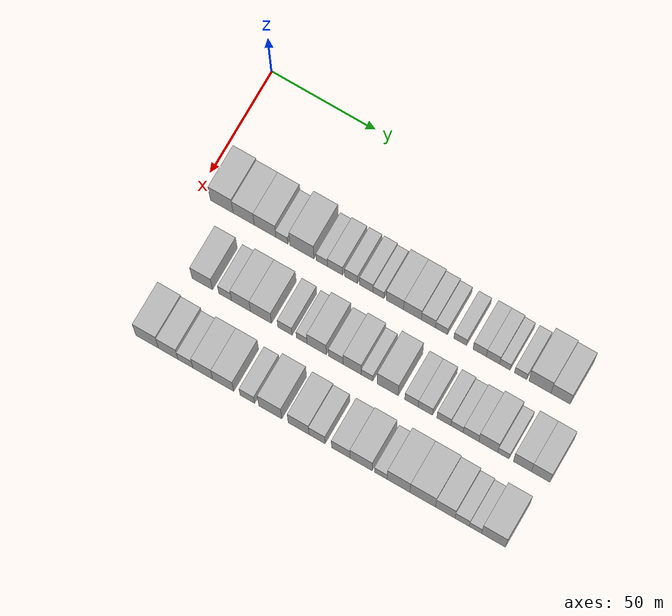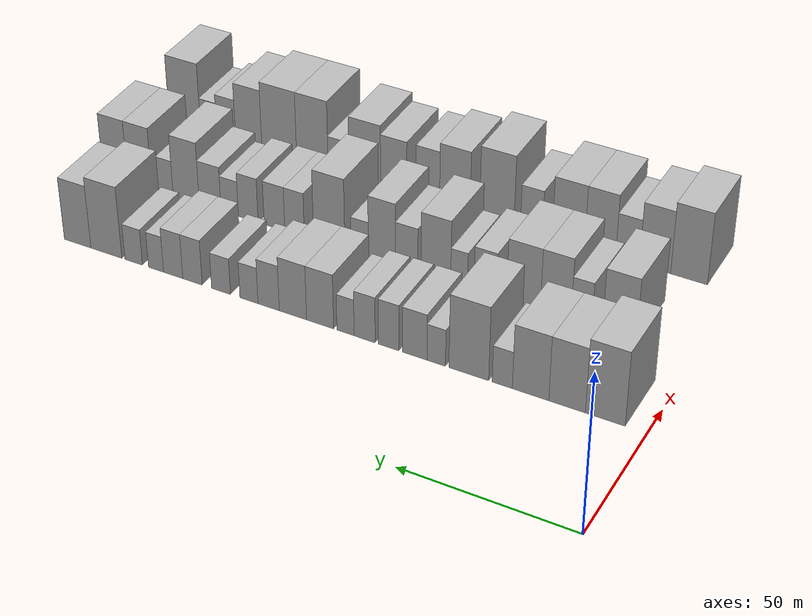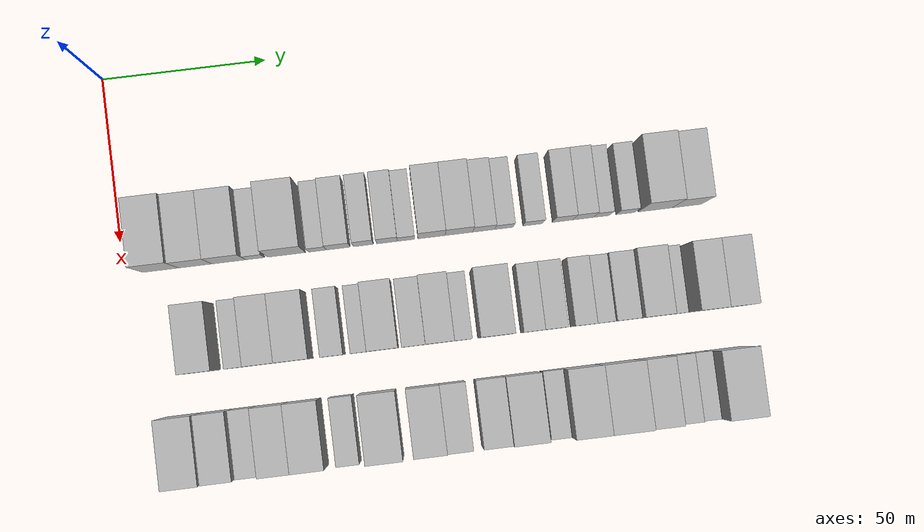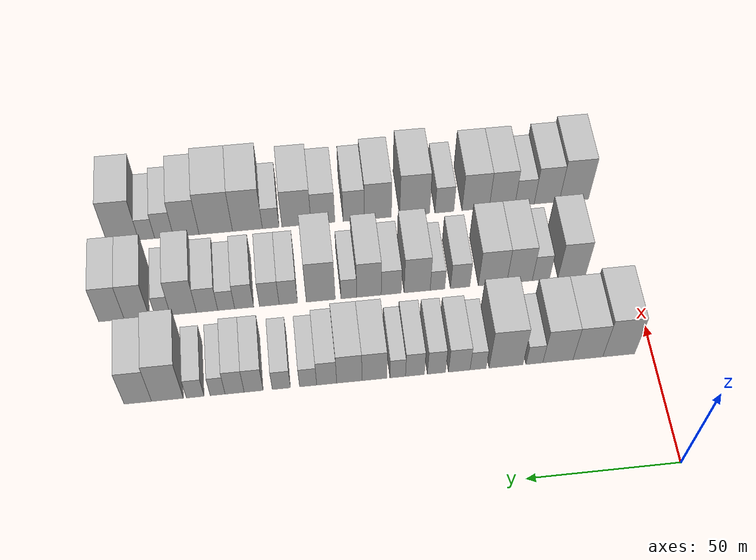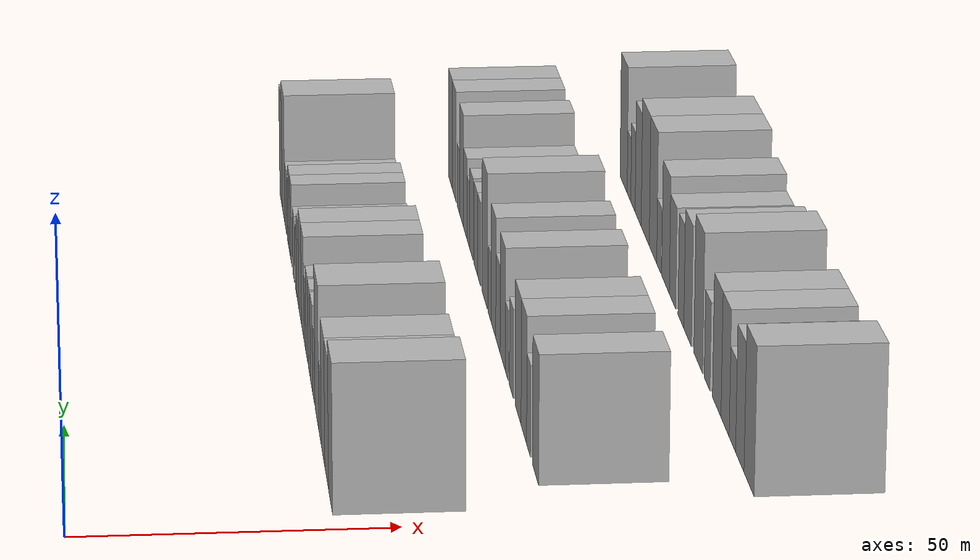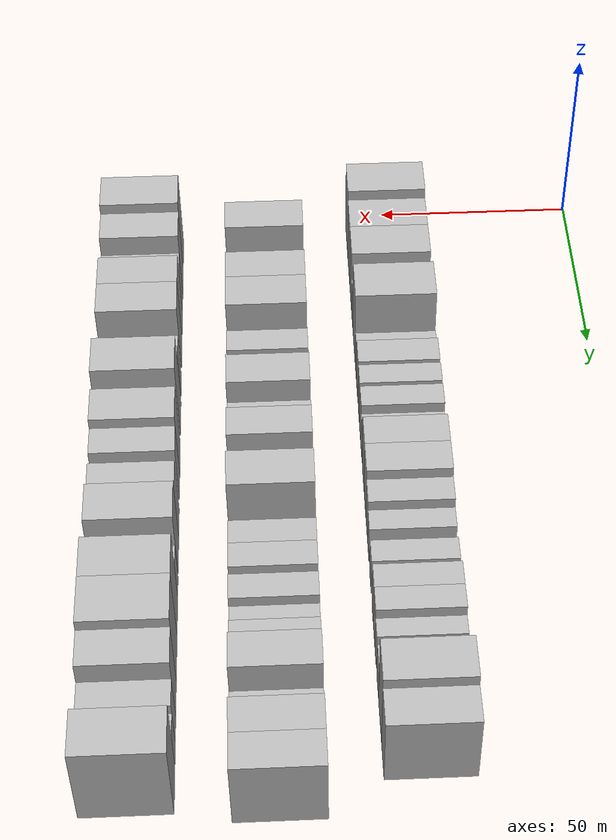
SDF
<sdf version="1.6">
 <world name="default">
  <model name="building_39">
   <static>1</static>
   <pose>50.0000 11.4217 0 0.000000 0.000000 0.000000</pose>
   <link name="link">
    <pose>0 0 12.00 0 0 0</pose>
    <collision name="collision"><geometry><box><size>20.0000 10.8511 24.0000</size></box></geometry></collision>
    <visual name="visual">
     <cast_shadows>0</cast_shadows>
     <geometry><box><size>20.0000 10.8511 24.0000</size></box></geometry>
     <material>
      <script>
       <uri>model://HANNAS_wall/materials/scripts</uri>
       <uri>model://HANNAS_wall/materials/textures</uri>
       <name>vrc/HANNAS_wall</name>
      </script>
     </material>
    </visual>
   </link>
  </model>
  <model name="building_40">
   <static>1</static>
   <pose>50.0000 21.9112 0 0.000000 0.000000 0.000000</pose>
   <link name="link">
    <pose>0 0 10.50 0 0 0</pose>
    <collision name="collision"><geometry><box><size>20.0000 10.1278 21.0000</size></box></geometry></collision>
    <visual name="visual">
     <cast_shadows>0</cast_shadows>
     <geometry><box><size>20.0000 10.1278 21.0000</size></box></geometry>
     <material>
      <script>
       <uri>model://HANNAS_wall/materials/scripts</uri>
       <uri>model://HANNAS_wall/materials/textures</uri>
       <name>vrc/HANNAS_wall</name>
      </script>
     </material>
    </visual>
   </link>
  </model>
  <model name="building_41">
   <static>1</static>
   <pose>50.0000 32.0943 0 0.000000 0.000000 0.000000</pose>
   <link name="link">
    <pose>0 0 10.50 0 0 0</pose>
    <collision name="collision"><geometry><box><size>20.0000 10.2385 21.0000</size></box></geometry></collision>
    <visual name="visual">
     <cast_shadows>0</cast_shadows>
     <geometry><box><size>20.0000 10.2385 21.0000</size></box></geometry>
     <material>
      <script>
       <uri>model://HANNAS_wall/materials/scripts</uri>
       <uri>model://HANNAS_wall/materials/textures</uri>
       <name>vrc/HANNAS_wall</name>
      </script>
     </material>
    </visual>
   </link>
  </model>
  <model name="building_42">
   <static>1</static>
   <pose>50.0000 40.0651 0 0.000000 0.000000 0.000000</pose>
   <link name="link">
    <pose>0 0 6.00 0 0 0</pose>
    <collision name="collision"><geometry><box><size>20.0000 5.7032 12.0000</size></box></geometry></collision>
    <visual name="visual">
     <cast_shadows>0</cast_shadows>
     <geometry><box><size>20.0000 5.7032 12.0000</size></box></geometry>
     <material>
      <script>
       <uri>model://HANNAS_wall/materials/scripts</uri>
       <uri>model://HANNAS_wall/materials/textures</uri>
       <name>vrc/HANNAS_wall</name>
      </script>
     </material>
    </visual>
   </link>
  </model>
  <model name="building_43">
   <static>1</static>
   <pose>50.0000 49.6296 0 0.000000 0.000000 0.000000</pose>
   <link name="link">
    <pose>0 0 12.00 0 0 0</pose>
    <collision name="collision"><geometry><box><size>20.0000 11.4258 24.0000</size></box></geometry></collision>
    <visual name="visual">
     <cast_shadows>0</cast_shadows>
     <geometry><box><size>20.0000 11.4258 24.0000</size></box></geometry>
     <material>
      <script>
       <uri>model://HANNAS_wall/materials/scripts</uri>
       <uri>model://HANNAS_wall/materials/textures</uri>
       <name>vrc/HANNAS_wall</name>
      </script>
     </material>
    </visual>
   </link>
  </model>
  <model name="building_44">
   <static>1</static>
   <pose>50.0000 59.0430 0 0.000000 0.000000 0.000000</pose>
   <link name="link">
    <pose>0 0 6.00 0 0 0</pose>
    <collision name="collision"><geometry><box><size>20.0000 5.4010 12.0000</size></box></geometry></collision>
    <visual name="visual">
     <cast_shadows>0</cast_shadows>
     <geometry><box><size>20.0000 5.4010 12.0000</size></box></geometry>
     <material>
      <script>
       <uri>model://HANNAS_wall/materials/scripts</uri>
       <uri>model://HANNAS_wall/materials/textures</uri>
       <name>vrc/HANNAS_wall</name>
      </script>
     </material>
    </visual>
   </link>
  </model>
  <model name="building_45">
   <static>1</static>
   <pose>50.0000 65.3539 0 0.000000 0.000000 0.000000</pose>
   <link name="link">
    <pose>0 0 7.50 0 0 0</pose>
    <collision name="collision"><geometry><box><size>20.0000 7.2207 15.0000</size></box></geometry></collision>
    <visual name="visual">
     <cast_shadows>0</cast_shadows>
     <geometry><box><size>20.0000 7.2207 15.0000</size></box></geometry>
     <material>
      <script>
       <uri>model://HANNAS_wall/materials/scripts</uri>
       <uri>model://HANNAS_wall/materials/textures</uri>
       <name>vrc/HANNAS_wall</name>
      </script>
     </material>
    </visual>
   </link>
  </model>
  <model name="building_46">
   <static>1</static>
   <pose>50.0000 72.9925 0 0.000000 0.000000 0.000000</pose>
   <link name="link">
    <pose>0 0 7.50 0 0 0</pose>
    <collision name="collision"><geometry><box><size>20.0000 6.0565 15.0000</size></box></geometry></collision>
    <visual name="visual">
     <cast_shadows>0</cast_shadows>
     <geometry><box><size>20.0000 6.0565 15.0000</size></box></geometry>
     <material>
      <script>
       <uri>model://HANNAS_wall/materials/scripts</uri>
       <uri>model://HANNAS_wall/materials/textures</uri>
       <name>vrc/HANNAS_wall</name>
      </script>
     </material>
    </visual>
   </link>
  </model>
  <model name="building_47">
   <static>1</static>
   <pose>50.0000 80.1737 0 0.000000 0.000000 0.000000</pose>
   <link name="link">
    <pose>0 0 7.50 0 0 0</pose>
    <collision name="collision"><geometry><box><size>20.0000 6.3059 15.0000</size></box></geometry></collision>
    <visual name="visual">
     <cast_shadows>0</cast_shadows>
     <geometry><box><size>20.0000 6.3059 15.0000</size></box></geometry>
     <material>
      <script>
       <uri>model://HANNAS_wall/materials/scripts</uri>
       <uri>model://HANNAS_wall/materials/textures</uri>
       <name>vrc/HANNAS_wall</name>
      </script>
     </material>
    </visual>
   </link>
  </model>
  <model name="building_48">
   <static>1</static>
   <pose>50.0000 85.9237 0 0.000000 0.000000 0.000000</pose>
   <link name="link">
    <pose>0 0 6.00 0 0 0</pose>
    <collision name="collision"><geometry><box><size>20.0000 5.1941 12.0000</size></box></geometry></collision>
    <visual name="visual">
     <cast_shadows>0</cast_shadows>
     <geometry><box><size>20.0000 5.1941 12.0000</size></box></geometry>
     <material>
      <script>
       <uri>model://HANNAS_wall/materials/scripts</uri>
       <uri>model://HANNAS_wall/materials/textures</uri>
       <name>vrc/HANNAS_wall</name>
      </script>
     </material>
    </visual>
   </link>
  </model>
  <model name="building_49">
   <static>1</static>
   <pose>50.0000 93.6527 0 0.000000 0.000000 0.000000</pose>
   <link name="link">
    <pose>0 0 9.00 0 0 0</pose>
    <collision name="collision"><geometry><box><size>20.0000 8.2641 18.0000</size></box></geometry></collision>
    <visual name="visual">
     <cast_shadows>0</cast_shadows>
     <geometry><box><size>20.0000 8.2641 18.0000</size></box></geometry>
     <material>
      <script>
       <uri>model://HANNAS_wall/materials/scripts</uri>
       <uri>model://HANNAS_wall/materials/textures</uri>
       <name>vrc/HANNAS_wall</name>
      </script>
     </material>
    </visual>
   </link>
  </model>
  <model name="building_50">
   <static>1</static>
   <pose>50.0000 101.9920 0 0.000000 0.000000 0.000000</pose>
   <link name="link">
    <pose>0 0 9.00 0 0 0</pose>
    <collision name="collision"><geometry><box><size>20.0000 8.4146 18.0000</size></box></geometry></collision>
    <visual name="visual">
     <cast_shadows>0</cast_shadows>
     <geometry><box><size>20.0000 8.4146 18.0000</size></box></geometry>
     <material>
      <script>
       <uri>model://HANNAS_wall/materials/scripts</uri>
       <uri>model://HANNAS_wall/materials/textures</uri>
       <name>vrc/HANNAS_wall</name>
      </script>
     </material>
    </visual>
   </link>
  </model>
  <model name="building_51">
   <static>1</static>
   <pose>50.0000 109.5094 0 0.000000 0.000000 0.000000</pose>
   <link name="link">
    <pose>0 0 7.50 0 0 0</pose>
    <collision name="collision"><geometry><box><size>20.0000 6.6202 15.0000</size></box></geometry></collision>
    <visual name="visual">
     <cast_shadows>0</cast_shadows>
     <geometry><box><size>20.0000 6.6202 15.0000</size></box></geometry>
     <material>
      <script>
       <uri>model://HANNAS_wall/materials/scripts</uri>
       <uri>model://HANNAS_wall/materials/textures</uri>
       <name>vrc/HANNAS_wall</name>
      </script>
     </material>
    </visual>
   </link>
  </model>
  <model name="building_52">
   <static>1</static>
   <pose>50.0000 115.6537 0 0.000000 0.000000 0.000000</pose>
   <link name="link">
    <pose>0 0 6.00 0 0 0</pose>
    <collision name="collision"><geometry><box><size>20.0000 5.6683 12.0000</size></box></geometry></collision>
    <visual name="visual">
     <cast_shadows>0</cast_shadows>
     <geometry><box><size>20.0000 5.6683 12.0000</size></box></geometry>
     <material>
      <script>
       <uri>model://HANNAS_wall/materials/scripts</uri>
       <uri>model://HANNAS_wall/materials/textures</uri>
       <name>vrc/HANNAS_wall</name>
      </script>
     </material>
    </visual>
   </link>
  </model>
  <model name="building_53">
   <static>1</static>
   <pose>50.0000 124.4864 0 0.000000 0.000000 0.000000</pose>
   <link name="link">
    <pose>0 0 6.00 0 0 0</pose>
    <collision name="collision"><geometry><box><size>20.0000 5.9971 12.0000</size></box></geometry></collision>
    <visual name="visual">
     <cast_shadows>0</cast_shadows>
     <geometry><box><size>20.0000 5.9971 12.0000</size></box></geometry>
     <material>
      <script>
       <uri>model://HANNAS_wall/materials/scripts</uri>
       <uri>model://HANNAS_wall/materials/textures</uri>
       <name>vrc/HANNAS_wall</name>
      </script>
     </material>
    </visual>
   </link>
  </model>
  <model name="building_54">
   <static>1</static>
   <pose>50.0000 133.6102 0 0.000000 0.000000 0.000000</pose>
   <link name="link">
    <pose>0 0 7.50 0 0 0</pose>
    <collision name="collision"><geometry><box><size>20.0000 6.2505 15.0000</size></box></geometry></collision>
    <visual name="visual">
     <cast_shadows>0</cast_shadows>
     <geometry><box><size>20.0000 6.2505 15.0000</size></box></geometry>
     <material>
      <script>
       <uri>model://HANNAS_wall/materials/scripts</uri>
       <uri>model://HANNAS_wall/materials/textures</uri>
       <name>vrc/HANNAS_wall</name>
      </script>
     </material>
    </visual>
   </link>
  </model>
  <model name="building_55">
   <static>1</static>
   <pose>50.0000 139.8593 0 0.000000 0.000000 0.000000</pose>
   <link name="link">
    <pose>0 0 7.50 0 0 0</pose>
    <collision name="collision"><geometry><box><size>20.0000 6.2476 15.0000</size></box></geometry></collision>
    <visual name="visual">
     <cast_shadows>0</cast_shadows>
     <geometry><box><size>20.0000 6.2476 15.0000</size></box></geometry>
     <material>
      <script>
       <uri>model://HANNAS_wall/materials/scripts</uri>
       <uri>model://HANNAS_wall/materials/textures</uri>
       <name>vrc/HANNAS_wall</name>
      </script>
     </material>
    </visual>
   </link>
  </model>
  <model name="building_56">
   <static>1</static>
   <pose>50.0000 145.4303 0 0.000000 0.000000 0.000000</pose>
   <link name="link">
    <pose>0 0 6.00 0 0 0</pose>
    <collision name="collision"><geometry><box><size>20.0000 4.8945 12.0000</size></box></geometry></collision>
    <visual name="visual">
     <cast_shadows>0</cast_shadows>
     <geometry><box><size>20.0000 4.8945 12.0000</size></box></geometry>
     <material>
      <script>
       <uri>model://HANNAS_wall/materials/scripts</uri>
       <uri>model://HANNAS_wall/materials/textures</uri>
       <name>vrc/HANNAS_wall</name>
      </script>
     </material>
    </visual>
   </link>
  </model>
  <model name="building_57">
   <static>1</static>
   <pose>50.0000 152.7708 0 0.000000 0.000000 0.000000</pose>
   <link name="link">
    <pose>0 0 6.00 0 0 0</pose>
    <collision name="collision"><geometry><box><size>20.0000 5.7866 12.0000</size></box></geometry></collision>
    <visual name="visual">
     <cast_shadows>0</cast_shadows>
     <geometry><box><size>20.0000 5.7866 12.0000</size></box></geometry>
     <material>
      <script>
       <uri>model://HANNAS_wall/materials/scripts</uri>
       <uri>model://HANNAS_wall/materials/textures</uri>
       <name>vrc/HANNAS_wall</name>
      </script>
     </material>
    </visual>
   </link>
  </model>
  <model name="building_58">
   <static>1</static>
   <pose>50.0000 161.8327 0 0.000000 0.000000 0.000000</pose>
   <link name="link">
    <pose>0 0 12.00 0 0 0</pose>
    <collision name="collision"><geometry><box><size>20.0000 10.3371 24.0000</size></box></geometry></collision>
    <visual name="visual">
     <cast_shadows>0</cast_shadows>
     <geometry><box><size>20.0000 10.3371 24.0000</size></box></geometry>
     <material>
      <script>
       <uri>model://HANNAS_wall/materials/scripts</uri>
       <uri>model://HANNAS_wall/materials/textures</uri>
       <name>vrc/HANNAS_wall</name>
      </script>
     </material>
    </visual>
   </link>
  </model>
  <model name="building_59">
   <static>1</static>
   <pose>50.0000 171.4739 0 0.000000 0.000000 0.000000</pose>
   <link name="link">
    <pose>0 0 10.50 0 0 0</pose>
    <collision name="collision"><geometry><box><size>20.0000 8.9453 21.0000</size></box></geometry></collision>
    <visual name="visual">
     <cast_shadows>0</cast_shadows>
     <geometry><box><size>20.0000 8.9453 21.0000</size></box></geometry>
     <material>
      <script>
       <uri>model://HANNAS_wall/materials/scripts</uri>
       <uri>model://HANNAS_wall/materials/textures</uri>
       <name>vrc/HANNAS_wall</name>
      </script>
     </material>
    </visual>
   </link>
  </model>
  <model name="building_122">
   <static>1</static>
   <pose>82.0000 21.0527 0 0.000000 0.000000 0.000000</pose>
   <link name="link">
    <pose>0 0 10.50 0 0 0</pose>
    <collision name="collision"><geometry><box><size>20.0000 9.7497 21.0000</size></box></geometry></collision>
    <visual name="visual">
     <cast_shadows>0</cast_shadows>
     <geometry><box><size>20.0000 9.7497 21.0000</size></box></geometry>
     <material>
      <script>
       <uri>model://HANNAS_wall/materials/scripts</uri>
       <uri>model://HANNAS_wall/materials/textures</uri>
       <name>vrc/HANNAS_wall</name>
      </script>
     </material>
    </visual>
   </link>
  </model>
  <model name="building_123">
   <static>1</static>
   <pose>82.0000 31.9591 0 0.000000 0.000000 0.000000</pose>
   <link name="link">
    <pose>0 0 7.50 0 0 0</pose>
    <collision name="collision"><geometry><box><size>20.0000 6.0630 15.0000</size></box></geometry></collision>
    <visual name="visual">
     <cast_shadows>0</cast_shadows>
     <geometry><box><size>20.0000 6.0630 15.0000</size></box></geometry>
     <material>
      <script>
       <uri>model://HANNAS_wall/materials/scripts</uri>
       <uri>model://HANNAS_wall/materials/textures</uri>
       <name>vrc/HANNAS_wall</name>
      </script>
     </material>
    </visual>
   </link>
  </model>
  <model name="building_124">
   <static>1</static>
   <pose>82.0000 39.4758 0 0.000000 0.000000 0.000000</pose>
   <link name="link">
    <pose>0 0 10.50 0 0 0</pose>
    <collision name="collision"><geometry><box><size>20.0000 8.9704 21.0000</size></box></geometry></collision>
    <visual name="visual">
     <cast_shadows>0</cast_shadows>
     <geometry><box><size>20.0000 8.9704 21.0000</size></box></geometry>
     <material>
      <script>
       <uri>model://HANNAS_wall/materials/scripts</uri>
       <uri>model://HANNAS_wall/materials/textures</uri>
       <name>vrc/HANNAS_wall</name>
      </script>
     </material>
    </visual>
   </link>
  </model>
  <model name="building_125">
   <static>1</static>
   <pose>82.0000 48.9496 0 0.000000 0.000000 0.000000</pose>
   <link name="link">
    <pose>0 0 10.50 0 0 0</pose>
    <collision name="collision"><geometry><box><size>20.0000 9.9773 21.0000</size></box></geometry></collision>
    <visual name="visual">
     <cast_shadows>0</cast_shadows>
     <geometry><box><size>20.0000 9.9773 21.0000</size></box></geometry>
     <material>
      <script>
       <uri>model://HANNAS_wall/materials/scripts</uri>
       <uri>model://HANNAS_wall/materials/textures</uri>
       <name>vrc/HANNAS_wall</name>
      </script>
     </material>
    </visual>
   </link>
  </model>
  <model name="building_126">
   <static>1</static>
   <pose>82.0000 60.3210 0 0.000000 0.000000 0.000000</pose>
   <link name="link">
    <pose>0 0 7.50 0 0 0</pose>
    <collision name="collision"><geometry><box><size>20.0000 6.7654 15.0000</size></box></geometry></collision>
    <visual name="visual">
     <cast_shadows>0</cast_shadows>
     <geometry><box><size>20.0000 6.7654 15.0000</size></box></geometry>
     <material>
      <script>
       <uri>model://HANNAS_wall/materials/scripts</uri>
       <uri>model://HANNAS_wall/materials/textures</uri>
       <name>vrc/HANNAS_wall</name>
      </script>
     </material>
    </visual>
   </link>
  </model>
  <model name="building_127">
   <static>1</static>
   <pose>82.0000 68.2497 0 0.000000 0.000000 0.000000</pose>
   <link name="link">
    <pose>0 0 6.00 0 0 0</pose>
    <collision name="collision"><geometry><box><size>20.0000 5.0921 12.0000</size></box></geometry></collision>
    <visual name="visual">
     <cast_shadows>0</cast_shadows>
     <geometry><box><size>20.0000 5.0921 12.0000</size></box></geometry>
     <material>
      <script>
       <uri>model://HANNAS_wall/materials/scripts</uri>
       <uri>model://HANNAS_wall/materials/textures</uri>
       <name>vrc/HANNAS_wall</name>
      </script>
     </material>
    </visual>
   </link>
  </model>
  <model name="building_128">
   <static>1</static>
   <pose>82.0000 75.3311 0 0.000000 0.000000 0.000000</pose>
   <link name="link">
    <pose>0 0 10.50 0 0 0</pose>
    <collision name="collision"><geometry><box><size>20.0000 9.0707 21.0000</size></box></geometry></collision>
    <visual name="visual">
     <cast_shadows>0</cast_shadows>
     <geometry><box><size>20.0000 9.0707 21.0000</size></box></geometry>
     <material>
      <script>
       <uri>model://HANNAS_wall/materials/scripts</uri>
       <uri>model://HANNAS_wall/materials/textures</uri>
       <name>vrc/HANNAS_wall</name>
      </script>
     </material>
    </visual>
   </link>
  </model>
  <model name="building_129">
   <static>1</static>
   <pose>82.0000 84.3439 0 0.000000 0.000000 0.000000</pose>
   <link name="link">
    <pose>0 0 7.50 0 0 0</pose>
    <collision name="collision"><geometry><box><size>20.0000 6.9548 15.0000</size></box></geometry></collision>
    <visual name="visual">
     <cast_shadows>0</cast_shadows>
     <geometry><box><size>20.0000 6.9548 15.0000</size></box></geometry>
     <material>
      <script>
       <uri>model://HANNAS_wall/materials/scripts</uri>
       <uri>model://HANNAS_wall/materials/textures</uri>
       <name>vrc/HANNAS_wall</name>
      </script>
     </material>
    </visual>
   </link>
  </model>
  <model name="building_130">
   <static>1</static>
   <pose>82.0000 92.0499 0 0.000000 0.000000 0.000000</pose>
   <link name="link">
    <pose>0 0 10.50 0 0 0</pose>
    <collision name="collision"><geometry><box><size>20.0000 8.4572 21.0000</size></box></geometry></collision>
    <visual name="visual">
     <cast_shadows>0</cast_shadows>
     <geometry><box><size>20.0000 8.4572 21.0000</size></box></geometry>
     <material>
      <script>
       <uri>model://HANNAS_wall/materials/scripts</uri>
       <uri>model://HANNAS_wall/materials/textures</uri>
       <name>vrc/HANNAS_wall</name>
      </script>
     </material>
    </visual>
   </link>
  </model>
  <model name="building_131">
   <static>1</static>
   <pose>82.0000 99.0028 0 0.000000 0.000000 0.000000</pose>
   <link name="link">
    <pose>0 0 6.00 0 0 0</pose>
    <collision name="collision"><geometry><box><size>20.0000 5.4487 12.0000</size></box></geometry></collision>
    <visual name="visual">
     <cast_shadows>0</cast_shadows>
     <geometry><box><size>20.0000 5.4487 12.0000</size></box></geometry>
     <material>
      <script>
       <uri>model://HANNAS_wall/materials/scripts</uri>
       <uri>model://HANNAS_wall/materials/textures</uri>
       <name>vrc/HANNAS_wall</name>
      </script>
     </material>
    </visual>
   </link>
  </model>
  <model name="building_132">
   <static>1</static>
   <pose>82.0000 108.7247 0 0.000000 0.000000 0.000000</pose>
   <link name="link">
    <pose>0 0 12.00 0 0 0</pose>
    <collision name="collision"><geometry><box><size>20.0000 9.9951 24.0000</size></box></geometry></collision>
    <visual name="visual">
     <cast_shadows>0</cast_shadows>
     <geometry><box><size>20.0000 9.9951 24.0000</size></box></geometry>
     <material>
      <script>
       <uri>model://HANNAS_wall/materials/scripts</uri>
       <uri>model://HANNAS_wall/materials/textures</uri>
       <name>vrc/HANNAS_wall</name>
      </script>
     </material>
    </visual>
   </link>
  </model>
  <model name="building_133">
   <static>1</static>
   <pose>82.0000 119.8972 0 0.000000 0.000000 0.000000</pose>
   <link name="link">
    <pose>0 0 7.50 0 0 0</pose>
    <collision name="collision"><geometry><box><size>20.0000 6.3500 15.0000</size></box></geometry></collision>
    <visual name="visual">
     <cast_shadows>0</cast_shadows>
     <geometry><box><size>20.0000 6.3500 15.0000</size></box></geometry>
     <material>
      <script>
       <uri>model://HANNAS_wall/materials/scripts</uri>
       <uri>model://HANNAS_wall/materials/textures</uri>
       <name>vrc/HANNAS_wall</name>
      </script>
     </material>
    </visual>
   </link>
  </model>
  <model name="building_134">
   <static>1</static>
   <pose>82.0000 126.4365 0 0.000000 0.000000 0.000000</pose>
   <link name="link">
    <pose>0 0 7.50 0 0 0</pose>
    <collision name="collision"><geometry><box><size>20.0000 6.7286 15.0000</size></box></geometry></collision>
    <visual name="visual">
     <cast_shadows>0</cast_shadows>
     <geometry><box><size>20.0000 6.7286 15.0000</size></box></geometry>
     <material>
      <script>
       <uri>model://HANNAS_wall/materials/scripts</uri>
       <uri>model://HANNAS_wall/materials/textures</uri>
       <name>vrc/HANNAS_wall</name>
      </script>
     </material>
    </visual>
   </link>
  </model>
  <model name="building_135">
   <static>1</static>
   <pose>82.0000 135.0624 0 0.000000 0.000000 0.000000</pose>
   <link name="link">
    <pose>0 0 7.50 0 0 0</pose>
    <collision name="collision"><geometry><box><size>20.0000 6.5232 15.0000</size></box></geometry></collision>
    <visual name="visual">
     <cast_shadows>0</cast_shadows>
     <geometry><box><size>20.0000 6.5232 15.0000</size></box></geometry>
     <material>
      <script>
       <uri>model://HANNAS_wall/materials/scripts</uri>
       <uri>model://HANNAS_wall/materials/textures</uri>
       <name>vrc/HANNAS_wall</name>
      </script>
     </material>
    </visual>
   </link>
  </model>
  <model name="building_136">
   <static>1</static>
   <pose>82.0000 141.2162 0 0.000000 0.000000 0.000000</pose>
   <link name="link">
    <pose>0 0 6.00 0 0 0</pose>
    <collision name="collision"><geometry><box><size>20.0000 5.7842 12.0000</size></box></geometry></collision>
    <visual name="visual">
     <cast_shadows>0</cast_shadows>
     <geometry><box><size>20.0000 5.7842 12.0000</size></box></geometry>
     <material>
      <script>
       <uri>model://HANNAS_wall/materials/scripts</uri>
       <uri>model://HANNAS_wall/materials/textures</uri>
       <name>vrc/HANNAS_wall</name>
      </script>
     </material>
    </visual>
   </link>
  </model>
  <model name="building_137">
   <static>1</static>
   <pose>82.0000 147.7558 0 0.000000 0.000000 0.000000</pose>
   <link name="link">
    <pose>0 0 7.50 0 0 0</pose>
    <collision name="collision"><geometry><box><size>20.0000 7.2950 15.0000</size></box></geometry></collision>
    <visual name="visual">
     <cast_shadows>0</cast_shadows>
     <geometry><box><size>20.0000 7.2950 15.0000</size></box></geometry>
     <material>
      <script>
       <uri>model://HANNAS_wall/materials/scripts</uri>
       <uri>model://HANNAS_wall/materials/textures</uri>
       <name>vrc/HANNAS_wall</name>
      </script>
     </material>
    </visual>
   </link>
  </model>
  <model name="building_138">
   <static>1</static>
   <pose>82.0000 155.8484 0 0.000000 0.000000 0.000000</pose>
   <link name="link">
    <pose>0 0 10.50 0 0 0</pose>
    <collision name="collision"><geometry><box><size>20.0000 8.8904 21.0000</size></box></geometry></collision>
    <visual name="visual">
     <cast_shadows>0</cast_shadows>
     <geometry><box><size>20.0000 8.8904 21.0000</size></box></geometry>
     <material>
      <script>
       <uri>model://HANNAS_wall/materials/scripts</uri>
       <uri>model://HANNAS_wall/materials/textures</uri>
       <name>vrc/HANNAS_wall</name>
      </script>
     </material>
    </visual>
   </link>
  </model>
  <model name="building_139">
   <static>1</static>
   <pose>82.0000 162.9040 0 0.000000 0.000000 0.000000</pose>
   <link name="link">
    <pose>0 0 6.00 0 0 0</pose>
    <collision name="collision"><geometry><box><size>20.0000 5.2207 12.0000</size></box></geometry></collision>
    <visual name="visual">
     <cast_shadows>0</cast_shadows>
     <geometry><box><size>20.0000 5.2207 12.0000</size></box></geometry>
     <material>
      <script>
       <uri>model://HANNAS_wall/materials/scripts</uri>
       <uri>model://HANNAS_wall/materials/textures</uri>
       <name>vrc/HANNAS_wall</name>
      </script>
     </material>
    </visual>
   </link>
  </model>
  <model name="building_140">
   <static>1</static>
   <pose>82.0000 171.7312 0 0.000000 0.000000 0.000000</pose>
   <link name="link">
    <pose>0 0 10.50 0 0 0</pose>
    <collision name="collision"><geometry><box><size>20.0000 8.4339 21.0000</size></box></geometry></collision>
    <visual name="visual">
     <cast_shadows>0</cast_shadows>
     <geometry><box><size>20.0000 8.4339 21.0000</size></box></geometry>
     <material>
      <script>
       <uri>model://HANNAS_wall/materials/scripts</uri>
       <uri>model://HANNAS_wall/materials/textures</uri>
       <name>vrc/HANNAS_wall</name>
      </script>
     </material>
    </visual>
   </link>
  </model>
  <model name="building_141">
   <static>1</static>
   <pose>82.0000 180.2635 0 0.000000 0.000000 0.000000</pose>
   <link name="link">
    <pose>0 0 10.50 0 0 0</pose>
    <collision name="collision"><geometry><box><size>20.0000 8.6305 21.0000</size></box></geometry></collision>
    <visual name="visual">
     <cast_shadows>0</cast_shadows>
     <geometry><box><size>20.0000 8.6305 21.0000</size></box></geometry>
     <material>
      <script>
       <uri>model://HANNAS_wall/materials/scripts</uri>
       <uri>model://HANNAS_wall/materials/textures</uri>
       <name>vrc/HANNAS_wall</name>
      </script>
     </material>
    </visual>
   </link>
  </model>
  <model name="building_197">
   <static>1</static>
   <pose>114.0000 13.8842 0 0.000000 0.000000 0.000000</pose>
   <link name="link">
    <pose>0 0 12.00 0 0 0</pose>
    <collision name="collision"><geometry><box><size>20.0000 10.7764 24.0000</size></box></geometry></collision>
    <visual name="visual">
     <cast_shadows>0</cast_shadows>
     <geometry><box><size>20.0000 10.7764 24.0000</size></box></geometry>
     <material>
      <script>
       <uri>model://HANNAS_wall/materials/scripts</uri>
       <uri>model://HANNAS_wall/materials/textures</uri>
       <name>vrc/HANNAS_wall</name>
      </script>
     </material>
    </visual>
   </link>
  </model>
  <model name="building_198">
   <static>1</static>
   <pose>114.0000 23.8802 0 0.000000 0.000000 0.000000</pose>
   <link name="link">
    <pose>0 0 10.50 0 0 0</pose>
    <collision name="collision"><geometry><box><size>20.0000 9.2158 21.0000</size></box></geometry></collision>
    <visual name="visual">
     <cast_shadows>0</cast_shadows>
     <geometry><box><size>20.0000 9.2158 21.0000</size></box></geometry>
     <material>
      <script>
       <uri>model://HANNAS_wall/materials/scripts</uri>
       <uri>model://HANNAS_wall/materials/textures</uri>
       <name>vrc/HANNAS_wall</name>
      </script>
     </material>
    </visual>
   </link>
  </model>
  <model name="building_199">
   <static>1</static>
   <pose>114.0000 32.0415 0 0.000000 0.000000 0.000000</pose>
   <link name="link">
    <pose>0 0 7.50 0 0 0</pose>
    <collision name="collision"><geometry><box><size>20.0000 7.1067 15.0000</size></box></geometry></collision>
    <visual name="visual">
     <cast_shadows>0</cast_shadows>
     <geometry><box><size>20.0000 7.1067 15.0000</size></box></geometry>
     <material>
      <script>
       <uri>model://HANNAS_wall/materials/scripts</uri>
       <uri>model://HANNAS_wall/materials/textures</uri>
       <name>vrc/HANNAS_wall</name>
      </script>
     </material>
    </visual>
   </link>
  </model>
  <model name="building_200">
   <static>1</static>
   <pose>114.0000 40.2715 0 0.000000 0.000000 0.000000</pose>
   <link name="link">
    <pose>0 0 10.50 0 0 0</pose>
    <collision name="collision"><geometry><box><size>20.0000 9.3533 21.0000</size></box></geometry></collision>
    <visual name="visual">
     <cast_shadows>0</cast_shadows>
     <geometry><box><size>20.0000 9.3533 21.0000</size></box></geometry>
     <material>
      <script>
       <uri>model://HANNAS_wall/materials/scripts</uri>
       <uri>model://HANNAS_wall/materials/textures</uri>
       <name>vrc/HANNAS_wall</name>
      </script>
     </material>
    </visual>
   </link>
  </model>
  <model name="building_201">
   <static>1</static>
   <pose>114.0000 49.9174 0 0.000000 0.000000 0.000000</pose>
   <link name="link">
    <pose>0 0 10.50 0 0 0</pose>
    <collision name="collision"><geometry><box><size>20.0000 9.9386 21.0000</size></box></geometry></collision>
    <visual name="visual">
     <cast_shadows>0</cast_shadows>
     <geometry><box><size>20.0000 9.9386 21.0000</size></box></geometry>
     <material>
      <script>
       <uri>model://HANNAS_wall/materials/scripts</uri>
       <uri>model://HANNAS_wall/materials/textures</uri>
       <name>vrc/HANNAS_wall</name>
      </script>
     </material>
    </visual>
   </link>
  </model>
  <model name="building_202">
   <static>1</static>
   <pose>114.0000 61.3015 0 0.000000 0.000000 0.000000</pose>
   <link name="link">
    <pose>0 0 7.50 0 0 0</pose>
    <collision name="collision"><geometry><box><size>20.0000 6.8295 15.0000</size></box></geometry></collision>
    <visual name="visual">
     <cast_shadows>0</cast_shadows>
     <geometry><box><size>20.0000 6.8295 15.0000</size></box></geometry>
     <material>
      <script>
       <uri>model://HANNAS_wall/materials/scripts</uri>
       <uri>model://HANNAS_wall/materials/textures</uri>
       <name>vrc/HANNAS_wall</name>
      </script>
     </material>
    </visual>
   </link>
  </model>
  <model name="building_203">
   <static>1</static>
   <pose>114.0000 72.1298 0 0.000000 0.000000 0.000000</pose>
   <link name="link">
    <pose>0 0 12.00 0 0 0</pose>
    <collision name="collision"><geometry><box><size>20.0000 10.8272 24.0000</size></box></geometry></collision>
    <visual name="visual">
     <cast_shadows>0</cast_shadows>
     <geometry><box><size>20.0000 10.8272 24.0000</size></box></geometry>
     <material>
      <script>
       <uri>model://HANNAS_wall/materials/scripts</uri>
       <uri>model://HANNAS_wall/materials/textures</uri>
       <name>vrc/HANNAS_wall</name>
      </script>
     </material>
    </visual>
   </link>
  </model>
  <model name="building_204">
   <static>1</static>
   <pose>114.0000 85.4197 0 0.000000 0.000000 0.000000</pose>
   <link name="link">
    <pose>0 0 10.50 0 0 0</pose>
    <collision name="collision"><geometry><box><size>20.0000 9.7526 21.0000</size></box></geometry></collision>
    <visual name="visual">
     <cast_shadows>0</cast_shadows>
     <geometry><box><size>20.0000 9.7526 21.0000</size></box></geometry>
     <material>
      <script>
       <uri>model://HANNAS_wall/materials/scripts</uri>
       <uri>model://HANNAS_wall/materials/textures</uri>
       <name>vrc/HANNAS_wall</name>
      </script>
     </material>
    </visual>
   </link>
  </model>
  <model name="building_205">
   <static>1</static>
   <pose>114.0000 94.1077 0 0.000000 0.000000 0.000000</pose>
   <link name="link">
    <pose>0 0 9.00 0 0 0</pose>
    <collision name="collision"><geometry><box><size>20.0000 7.6235 18.0000</size></box></geometry></collision>
    <visual name="visual">
     <cast_shadows>0</cast_shadows>
     <geometry><box><size>20.0000 7.6235 18.0000</size></box></geometry>
     <material>
      <script>
       <uri>model://HANNAS_wall/materials/scripts</uri>
       <uri>model://HANNAS_wall/materials/textures</uri>
       <name>vrc/HANNAS_wall</name>
      </script>
     </material>
    </visual>
   </link>
  </model>
  <model name="building_206">
   <static>1</static>
   <pose>114.0000 105.2028 0 0.000000 0.000000 0.000000</pose>
   <link name="link">
    <pose>0 0 9.00 0 0 0</pose>
    <collision name="collision"><geometry><box><size>20.0000 8.5667 18.0000</size></box></geometry></collision>
    <visual name="visual">
     <cast_shadows>0</cast_shadows>
     <geometry><box><size>20.0000 8.5667 18.0000</size></box></geometry>
     <material>
      <script>
       <uri>model://HANNAS_wall/materials/scripts</uri>
       <uri>model://HANNAS_wall/materials/textures</uri>
       <name>vrc/HANNAS_wall</name>
      </script>
     </material>
    </visual>
   </link>
  </model>
  <model name="building_207">
   <static>1</static>
   <pose>114.0000 114.7116 0 0.000000 0.000000 0.000000</pose>
   <link name="link">
    <pose>0 0 10.50 0 0 0</pose>
    <collision name="collision"><geometry><box><size>20.0000 10.4510 21.0000</size></box></geometry></collision>
    <visual name="visual">
     <cast_shadows>0</cast_shadows>
     <geometry><box><size>20.0000 10.4510 21.0000</size></box></geometry>
     <material>
      <script>
       <uri>model://HANNAS_wall/materials/scripts</uri>
       <uri>model://HANNAS_wall/materials/textures</uri>
       <name>vrc/HANNAS_wall</name>
      </script>
     </material>
    </visual>
   </link>
  </model>
  <model name="building_208">
   <static>1</static>
   <pose>114.0000 123.9359 0 0.000000 0.000000 0.000000</pose>
   <link name="link">
    <pose>0 0 6.00 0 0 0</pose>
    <collision name="collision"><geometry><box><size>20.0000 5.9975 12.0000</size></box></geometry></collision>
    <visual name="visual">
     <cast_shadows>0</cast_shadows>
     <geometry><box><size>20.0000 5.9975 12.0000</size></box></geometry>
     <material>
      <script>
       <uri>model://HANNAS_wall/materials/scripts</uri>
       <uri>model://HANNAS_wall/materials/textures</uri>
       <name>vrc/HANNAS_wall</name>
      </script>
     </material>
    </visual>
   </link>
  </model>
  <model name="building_209">
   <static>1</static>
   <pose>114.0000 132.2579 0 0.000000 0.000000 0.000000</pose>
   <link name="link">
    <pose>0 0 12.00 0 0 0</pose>
    <collision name="collision"><geometry><box><size>20.0000 10.6464 24.0000</size></box></geometry></collision>
    <visual name="visual">
     <cast_shadows>0</cast_shadows>
     <geometry><box><size>20.0000 10.6464 24.0000</size></box></geometry>
     <material>
      <script>
       <uri>model://HANNAS_wall/materials/scripts</uri>
       <uri>model://HANNAS_wall/materials/textures</uri>
       <name>vrc/HANNAS_wall</name>
      </script>
     </material>
    </visual>
   </link>
  </model>
  <model name="building_210">
   <static>1</static>
   <pose>114.0000 143.5419 0 0.000000 0.000000 0.000000</pose>
   <link name="link">
    <pose>0 0 12.00 0 0 0</pose>
    <collision name="collision"><geometry><box><size>20.0000 11.9215 24.0000</size></box></geometry></collision>
    <visual name="visual">
     <cast_shadows>0</cast_shadows>
     <geometry><box><size>20.0000 11.9215 24.0000</size></box></geometry>
     <material>
      <script>
       <uri>model://HANNAS_wall/materials/scripts</uri>
       <uri>model://HANNAS_wall/materials/textures</uri>
       <name>vrc/HANNAS_wall</name>
      </script>
     </material>
    </visual>
   </link>
  </model>
  <model name="building_211">
   <static>1</static>
   <pose>114.0000 154.0394 0 0.000000 0.000000 0.000000</pose>
   <link name="link">
    <pose>0 0 10.50 0 0 0</pose>
    <collision name="collision"><geometry><box><size>20.0000 9.0735 21.0000</size></box></geometry></collision>
    <visual name="visual">
     <cast_shadows>0</cast_shadows>
     <geometry><box><size>20.0000 9.0735 21.0000</size></box></geometry>
     <material>
      <script>
       <uri>model://HANNAS_wall/materials/scripts</uri>
       <uri>model://HANNAS_wall/materials/textures</uri>
       <name>vrc/HANNAS_wall</name>
      </script>
     </material>
    </visual>
   </link>
  </model>
  <model name="building_212">
   <static>1</static>
   <pose>114.0000 161.9000 0 0.000000 0.000000 0.000000</pose>
   <link name="link">
    <pose>0 0 7.50 0 0 0</pose>
    <collision name="collision"><geometry><box><size>20.0000 6.6476 15.0000</size></box></geometry></collision>
    <visual name="visual">
     <cast_shadows>0</cast_shadows>
     <geometry><box><size>20.0000 6.6476 15.0000</size></box></geometry>
     <material>
      <script>
       <uri>model://HANNAS_wall/materials/scripts</uri>
       <uri>model://HANNAS_wall/materials/textures</uri>
       <name>vrc/HANNAS_wall</name>
      </script>
     </material>
    </visual>
   </link>
  </model>
  <model name="building_213">
   <static>1</static>
   <pose>114.0000 168.0731 0 0.000000 0.000000 0.000000</pose>
   <link name="link">
    <pose>0 0 6.00 0 0 0</pose>
    <collision name="collision"><geometry><box><size>20.0000 5.6986 12.0000</size></box></geometry></collision>
    <visual name="visual">
     <cast_shadows>0</cast_shadows>
     <geometry><box><size>20.0000 5.6986 12.0000</size></box></geometry>
     <material>
      <script>
       <uri>model://HANNAS_wall/materials/scripts</uri>
       <uri>model://HANNAS_wall/materials/textures</uri>
       <name>vrc/HANNAS_wall</name>
      </script>
     </material>
    </visual>
   </link>
  </model>
  <model name="building_214">
   <static>1</static>
   <pose>114.0000 176.4763 0 0.000000 0.000000 0.000000</pose>
   <link name="link">
    <pose>0 0 12.00 0 0 0</pose>
    <collision name="collision"><geometry><box><size>20.0000 11.1077 24.0000</size></box></geometry></collision>
    <visual name="visual">
     <cast_shadows>0</cast_shadows>
     <geometry><box><size>20.0000 11.1077 24.0000</size></box></geometry>
     <material>
      <script>
       <uri>model://HANNAS_wall/materials/scripts</uri>
       <uri>model://HANNAS_wall/materials/textures</uri>
       <name>vrc/HANNAS_wall</name>
      </script>
     </material>
    </visual>
   </link>
  </model>
 </world>
</sdf>
